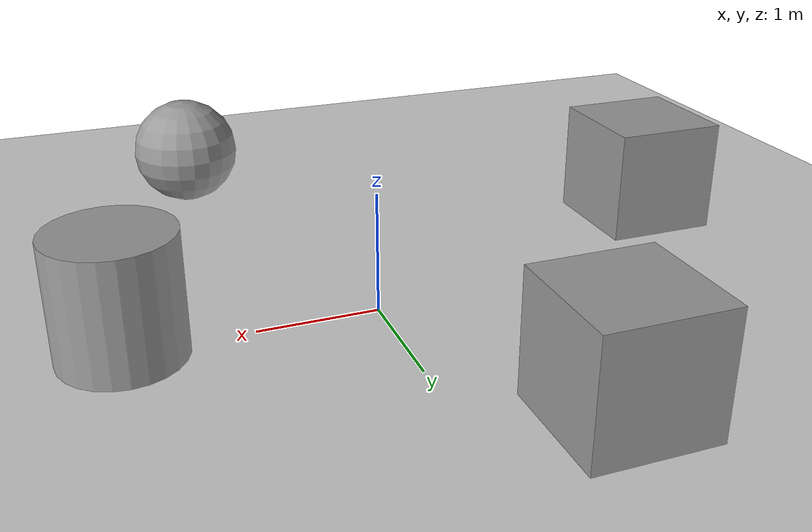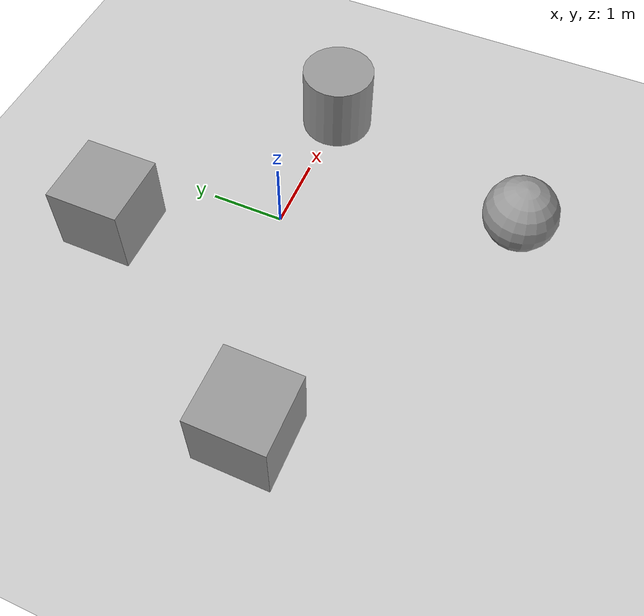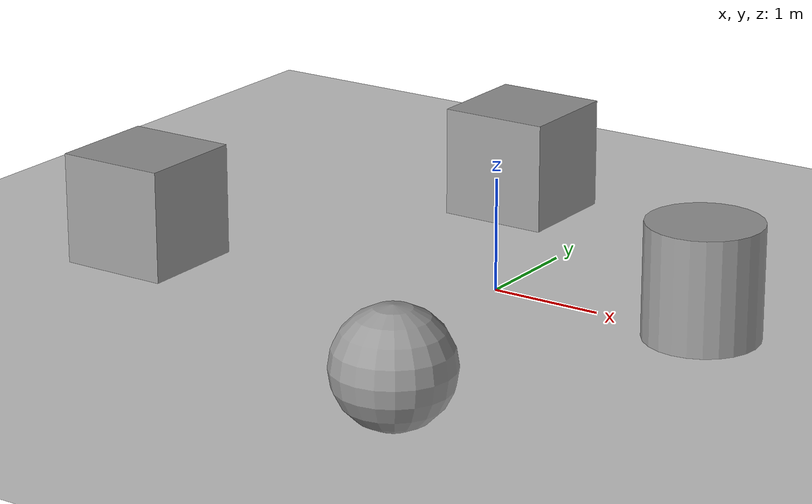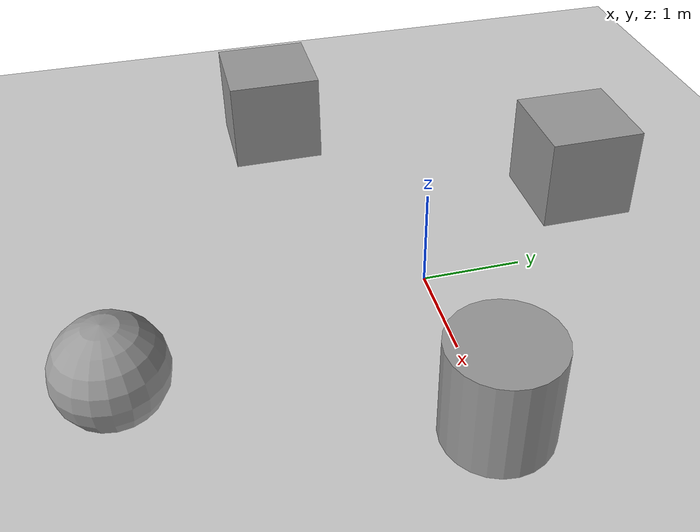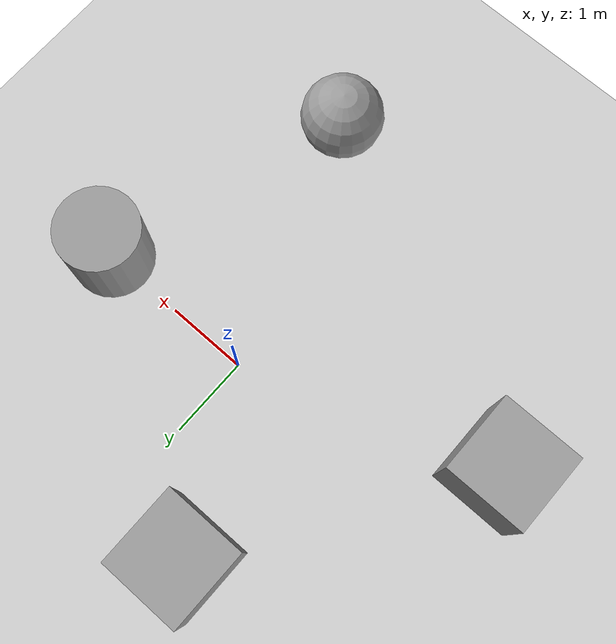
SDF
<sdf version="1.5">
 <world name="default">
  <light name="sun" type="directional">
   <pose>0 0 10 0 -0 0</pose>
   <diffuse>0.8 0.8 0.8 1</diffuse>
   <specular>0.2 0.2 0.2 1</specular>
   <attenuation>
    <range>1000</range>
    <constant>0.9</constant>
    <linear>0.01</linear>
    <quadratic>0.001</quadratic>
   </attenuation>
   <direction>-0.5 0.1 -0.9</direction>
  </light>
  <model name="ground_plane">
   <static>1</static>
   <link name="link">
    <collision name="collision">
     <geometry><plane><normal>0 0 1</normal><size>100 100</size></plane></geometry>
     <surface><friction><ode><mu>100</mu><mu2>50</mu2></ode></friction></surface>
    </collision>
    <visual name="visual">
     <cast_shadows>0</cast_shadows>
     <geometry><plane><normal>0 0 1</normal><size>100 100</size></plane></geometry>
     <material>
      <script><uri>file://media/materials/scripts/gazebo.material</uri><name>Gazebo/Grey</name></script>
     </material>
    </visual>
   </link>
  </model>
  <physics name="default_physics" default="0" type="ode">
   <max_step_size>0.001</max_step_size>
   <real_time_factor>1</real_time_factor>
   <real_time_update_rate>1000</real_time_update_rate>
   <gravity>0 0 -9.8</gravity>
   <magnetic_field>5.5645e-06 2.28758e-05 -4.23884e-05</magnetic_field>
  </physics>
  <scene><ambient>0.4 0.4 0.4 1</ambient><background>0.7 0.7 0.7 1</background><shadows>1</shadows></scene>
  <spherical_coordinates>
   <surface_model>EARTH_WGS84</surface_model>
   <latitude_deg>0</latitude_deg>
   <longitude_deg>0</longitude_deg>
   <elevation>0</elevation>
   <heading_deg>0</heading_deg>
  </spherical_coordinates>
  <model name="unit_box_1">
   <pose>-3 -0.999995 0.499995 -1e-05 -0 -0</pose>
   <link name="link">
    <inertial>
     <mass>1</mass>
     <inertia>
      <ixx>0.166667</ixx>
      <ixy>0</ixy>
      <ixz>0</ixz>
      <iyy>0.166667</iyy>
      <iyz>0</iyz>
      <izz>0.166667</izz>
     </inertia>
    </inertial>
    <collision name="collision"><geometry><box><size>1 1 1</size></box></geometry></collision>
    <visual name="visual">
     <geometry><box><size>1 1 1</size></box></geometry>
     <material>
      <script><name>Gazebo/Grey</name><uri>file://media/materials/scripts/gazebo.material</uri></script>
     </material>
    </visual>
   </link>
  </model>
  <model name="unit_box_2">
   <pose>-0.999995 2 0.499995 0 1e-05 0</pose>
   <link name="link">
    <inertial>
     <mass>1</mass>
     <inertia>
      <ixx>0.166667</ixx>
      <ixy>0</ixy>
      <ixz>0</ixz>
      <iyy>0.166667</iyy>
      <iyz>0</iyz>
      <izz>0.166667</izz>
     </inertia>
    </inertial>
    <collision name="collision"><geometry><box><size>1 1 1</size></box></geometry></collision>
    <visual name="visual">
     <geometry><box><size>1 1 1</size></box></geometry>
     <material>
      <script><name>Gazebo/Grey</name><uri>file://media/materials/scripts/gazebo.material</uri></script>
     </material>
    </visual>
   </link>
  </model>
  <model name="unit_sphere_1">
   <pose>1 -3 0.5 0 -0 0</pose>
   <link name="link">
    <inertial>
     <mass>1</mass>
     <inertia><ixx>0.1</ixx><ixy>0</ixy><ixz>0</ixz><iyy>0.1</iyy><iyz>0</iyz><izz>0.1</izz></inertia>
    </inertial>
    <collision name="collision"><geometry><sphere><radius>0.5</radius></sphere></geometry></collision>
    <visual name="visual">
     <geometry><sphere><radius>0.5</radius></sphere></geometry>
     <material>
      <script><name>Gazebo/Grey</name><uri>file://media/materials/scripts/gazebo.material</uri></script>
     </material>
    </visual>
   </link>
  </model>
  <model name="unit_cylinder_1">
   <pose>2 -2e-06 0.499997 3e-06 4e-06 -1.61559e-27</pose>
   <link name="link">
    <inertial>
     <mass>1</mass>
     <inertia><ixx>0.145833</ixx><ixy>0</ixy><ixz>0</ixz><iyy>0.145833</iyy><iyz>0</iyz><izz>0.125</izz></inertia>
    </inertial>
    <collision name="collision">
     <geometry><cylinder><radius>0.5</radius><length>1</length></cylinder></geometry>
    </collision>
    <visual name="visual">
     <geometry><cylinder><radius>0.5</radius><length>1</length></cylinder></geometry>
     <material>
      <script><name>Gazebo/Grey</name><uri>file://media/materials/scripts/gazebo.material</uri></script>
     </material>
    </visual>
   </link>
  </model>
 </world>
</sdf>
